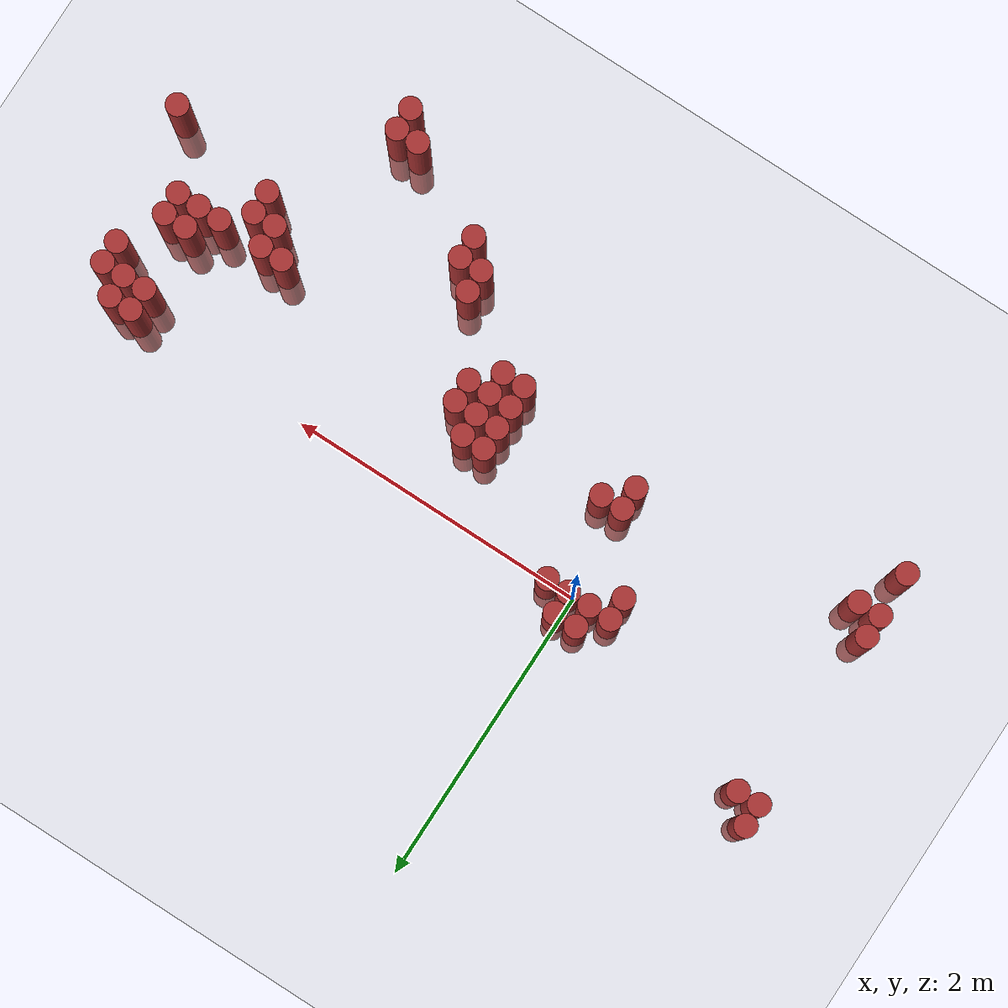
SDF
<sdf version="1.6">
 <world name="default">
  <model name="ground_plane">
   <static>1</static>
   <link name="link">
    <collision name="collision">
     <geometry><plane><normal>0 0 1</normal><size>100 100</size></plane></geometry>
     <surface><friction><ode><mu>100</mu><mu2>50</mu2></ode></friction></surface>
    </collision>
    <visual name="visual">
     <cast_shadows>0</cast_shadows>
     <geometry><plane><normal>0 0 1</normal><size>100 100</size></plane></geometry>
     <material>
      <script><uri>file://media/materials/scripts/gazebo.material</uri><name>Gazebo/Grey</name></script>
     </material>
    </visual>
   </link>
  </model>
  <model name="unit_cylinder_324">
   <static>1</static>
   <pose>-1.625000 -1.175000 0.000000 0.000000 0.000000 0.000000</pose>
   <link name="link">
    <inertial>
     <mass>1</mass>
     <inertia><ixx>0.145833</ixx><ixy>0</ixy><ixz>0</ixz><iyy>0.145833</iyy><iyz>0</iyz><izz>0.125</izz></inertia>
    </inertial>
    <collision name="collision">
     <geometry><cylinder><radius>0.075000</radius><length>1.5</length></cylinder></geometry>
    </collision>
    <visual name="visual">
     <geometry><cylinder><radius>0.075000</radius><length>1.5</length></cylinder></geometry>
     <material>
      <ambient>0.648000 0.192000 0.192000 1</ambient>
      <diffuse>0.648000 0.192000 0.192000 1</diffuse>
     </material>
     <material>
      <script><name>Gazebo/Grey</name><uri>file://media/materials/scripts/gazebo.material</uri></script>
     </material>
    </visual>
   </link>
  </model>
  <model name="unit_cylinder_325">
   <static>1</static>
   <pose>-1.625000 -0.875000 0.000000 0.000000 0.000000 0.000000</pose>
   <link name="link">
    <inertial>
     <mass>1</mass>
     <inertia><ixx>0.145833</ixx><ixy>0</ixy><ixz>0</ixz><iyy>0.145833</iyy><iyz>0</iyz><izz>0.125</izz></inertia>
    </inertial>
    <collision name="collision">
     <geometry><cylinder><radius>0.075000</radius><length>1.5</length></cylinder></geometry>
    </collision>
    <visual name="visual">
     <geometry><cylinder><radius>0.075000</radius><length>1.5</length></cylinder></geometry>
     <material>
      <ambient>0.648000 0.192000 0.192000 1</ambient>
      <diffuse>0.648000 0.192000 0.192000 1</diffuse>
     </material>
     <material>
      <script><name>Gazebo/Grey</name><uri>file://media/materials/scripts/gazebo.material</uri></script>
     </material>
    </visual>
   </link>
  </model>
  <model name="unit_cylinder_326">
   <static>1</static>
   <pose>-1.625000 -0.725000 0.000000 0.000000 0.000000 0.000000</pose>
   <link name="link">
    <inertial>
     <mass>1</mass>
     <inertia><ixx>0.145833</ixx><ixy>0</ixy><ixz>0</ixz><iyy>0.145833</iyy><iyz>0</iyz><izz>0.125</izz></inertia>
    </inertial>
    <collision name="collision">
     <geometry><cylinder><radius>0.075000</radius><length>1.5</length></cylinder></geometry>
    </collision>
    <visual name="visual">
     <geometry><cylinder><radius>0.075000</radius><length>1.5</length></cylinder></geometry>
     <material>
      <ambient>0.648000 0.192000 0.192000 1</ambient>
      <diffuse>0.648000 0.192000 0.192000 1</diffuse>
     </material>
     <material>
      <script><name>Gazebo/Grey</name><uri>file://media/materials/scripts/gazebo.material</uri></script>
     </material>
    </visual>
   </link>
  </model>
  <model name="unit_cylinder_327">
   <static>1</static>
   <pose>-1.625000 0.475000 0.000000 0.000000 0.000000 0.000000</pose>
   <link name="link">
    <inertial>
     <mass>1</mass>
     <inertia><ixx>0.145833</ixx><ixy>0</ixy><ixz>0</ixz><iyy>0.145833</iyy><iyz>0</iyz><izz>0.125</izz></inertia>
    </inertial>
    <collision name="collision">
     <geometry><cylinder><radius>0.075000</radius><length>1.5</length></cylinder></geometry>
    </collision>
    <visual name="visual">
     <geometry><cylinder><radius>0.075000</radius><length>1.5</length></cylinder></geometry>
     <material>
      <ambient>0.648000 0.192000 0.192000 1</ambient>
      <diffuse>0.648000 0.192000 0.192000 1</diffuse>
     </material>
     <material>
      <script><name>Gazebo/Grey</name><uri>file://media/materials/scripts/gazebo.material</uri></script>
     </material>
    </visual>
   </link>
  </model>
  <model name="unit_cylinder_328">
   <static>1</static>
   <pose>-1.625000 0.625000 0.000000 0.000000 0.000000 0.000000</pose>
   <link name="link">
    <inertial>
     <mass>1</mass>
     <inertia><ixx>0.145833</ixx><ixy>0</ixy><ixz>0</ixz><iyy>0.145833</iyy><iyz>0</iyz><izz>0.125</izz></inertia>
    </inertial>
    <collision name="collision">
     <geometry><cylinder><radius>0.075000</radius><length>1.5</length></cylinder></geometry>
    </collision>
    <visual name="visual">
     <geometry><cylinder><radius>0.075000</radius><length>1.5</length></cylinder></geometry>
     <material>
      <ambient>0.648000 0.192000 0.192000 1</ambient>
      <diffuse>0.648000 0.192000 0.192000 1</diffuse>
     </material>
     <material>
      <script><name>Gazebo/Grey</name><uri>file://media/materials/scripts/gazebo.material</uri></script>
     </material>
    </visual>
   </link>
  </model>
  <model name="unit_cylinder_332">
   <static>1</static>
   <pose>-1.475000 -0.875000 0.000000 0.000000 0.000000 0.000000</pose>
   <link name="link">
    <inertial>
     <mass>1</mass>
     <inertia><ixx>0.145833</ixx><ixy>0</ixy><ixz>0</ixz><iyy>0.145833</iyy><iyz>0</iyz><izz>0.125</izz></inertia>
    </inertial>
    <collision name="collision">
     <geometry><cylinder><radius>0.075000</radius><length>1.5</length></cylinder></geometry>
    </collision>
    <visual name="visual">
     <geometry><cylinder><radius>0.075000</radius><length>1.5</length></cylinder></geometry>
     <material>
      <ambient>0.648000 0.192000 0.192000 1</ambient>
      <diffuse>0.648000 0.192000 0.192000 1</diffuse>
     </material>
     <material>
      <script><name>Gazebo/Grey</name><uri>file://media/materials/scripts/gazebo.material</uri></script>
     </material>
    </visual>
   </link>
  </model>
  <model name="unit_cylinder_333">
   <static>1</static>
   <pose>-1.475000 0.475000 0.000000 0.000000 0.000000 0.000000</pose>
   <link name="link">
    <inertial>
     <mass>1</mass>
     <inertia><ixx>0.145833</ixx><ixy>0</ixy><ixz>0</ixz><iyy>0.145833</iyy><iyz>0</iyz><izz>0.125</izz></inertia>
    </inertial>
    <collision name="collision">
     <geometry><cylinder><radius>0.075000</radius><length>1.5</length></cylinder></geometry>
    </collision>
    <visual name="visual">
     <geometry><cylinder><radius>0.075000</radius><length>1.5</length></cylinder></geometry>
     <material>
      <ambient>0.648000 0.192000 0.192000 1</ambient>
      <diffuse>0.648000 0.192000 0.192000 1</diffuse>
     </material>
     <material>
      <script><name>Gazebo/Grey</name><uri>file://media/materials/scripts/gazebo.material</uri></script>
     </material>
    </visual>
   </link>
  </model>
  <model name="unit_cylinder_343">
   <static>1</static>
   <pose>-0.275000 -0.125000 0.000000 0.000000 0.000000 0.000000</pose>
   <link name="link">
    <inertial>
     <mass>1</mass>
     <inertia><ixx>0.145833</ixx><ixy>0</ixy><ixz>0</ixz><iyy>0.145833</iyy><iyz>0</iyz><izz>0.125</izz></inertia>
    </inertial>
    <collision name="collision">
     <geometry><cylinder><radius>0.075000</radius><length>1.5</length></cylinder></geometry>
    </collision>
    <visual name="visual">
     <geometry><cylinder><radius>0.075000</radius><length>1.5</length></cylinder></geometry>
     <material>
      <ambient>0.648000 0.192000 0.192000 1</ambient>
      <diffuse>0.648000 0.192000 0.192000 1</diffuse>
     </material>
     <material>
      <script><name>Gazebo/Grey</name><uri>file://media/materials/scripts/gazebo.material</uri></script>
     </material>
    </visual>
   </link>
  </model>
  <model name="unit_cylinder_344">
   <static>1</static>
   <pose>-0.275000 0.025000 0.000000 0.000000 0.000000 0.000000</pose>
   <link name="link">
    <inertial>
     <mass>1</mass>
     <inertia><ixx>0.145833</ixx><ixy>0</ixy><ixz>0</ixz><iyy>0.145833</iyy><iyz>0</iyz><izz>0.125</izz></inertia>
    </inertial>
    <collision name="collision">
     <geometry><cylinder><radius>0.075000</radius><length>1.5</length></cylinder></geometry>
    </collision>
    <visual name="visual">
     <geometry><cylinder><radius>0.075000</radius><length>1.5</length></cylinder></geometry>
     <material>
      <ambient>0.648000 0.192000 0.192000 1</ambient>
      <diffuse>0.648000 0.192000 0.192000 1</diffuse>
     </material>
     <material>
      <script><name>Gazebo/Grey</name><uri>file://media/materials/scripts/gazebo.material</uri></script>
     </material>
    </visual>
   </link>
  </model>
  <model name="unit_cylinder_345">
   <static>1</static>
   <pose>-0.125000 0.025000 0.000000 0.000000 0.000000 0.000000</pose>
   <link name="link">
    <inertial>
     <mass>1</mass>
     <inertia><ixx>0.145833</ixx><ixy>0</ixy><ixz>0</ixz><iyy>0.145833</iyy><iyz>0</iyz><izz>0.125</izz></inertia>
    </inertial>
    <collision name="collision">
     <geometry><cylinder><radius>0.075000</radius><length>1.5</length></cylinder></geometry>
    </collision>
    <visual name="visual">
     <geometry><cylinder><radius>0.075000</radius><length>1.5</length></cylinder></geometry>
     <material>
      <ambient>0.648000 0.192000 0.192000 1</ambient>
      <diffuse>0.648000 0.192000 0.192000 1</diffuse>
     </material>
     <material>
      <script><name>Gazebo/Grey</name><uri>file://media/materials/scripts/gazebo.material</uri></script>
     </material>
    </visual>
   </link>
  </model>
  <model name="unit_cylinder_346">
   <static>1</static>
   <pose>-0.125000 0.175000 0.000000 0.000000 0.000000 0.000000</pose>
   <link name="link">
    <inertial>
     <mass>1</mass>
     <inertia><ixx>0.145833</ixx><ixy>0</ixy><ixz>0</ixz><iyy>0.145833</iyy><iyz>0</iyz><izz>0.125</izz></inertia>
    </inertial>
    <collision name="collision">
     <geometry><cylinder><radius>0.075000</radius><length>1.5</length></cylinder></geometry>
    </collision>
    <visual name="visual">
     <geometry><cylinder><radius>0.075000</radius><length>1.5</length></cylinder></geometry>
     <material>
      <ambient>0.648000 0.192000 0.192000 1</ambient>
      <diffuse>0.648000 0.192000 0.192000 1</diffuse>
     </material>
     <material>
      <script><name>Gazebo/Grey</name><uri>file://media/materials/scripts/gazebo.material</uri></script>
     </material>
    </visual>
   </link>
  </model>
  <model name="unit_cylinder_348">
   <static>1</static>
   <pose>0.025000 -0.725000 0.000000 0.000000 0.000000 0.000000</pose>
   <link name="link">
    <inertial>
     <mass>1</mass>
     <inertia><ixx>0.145833</ixx><ixy>0</ixy><ixz>0</ixz><iyy>0.145833</iyy><iyz>0</iyz><izz>0.125</izz></inertia>
    </inertial>
    <collision name="collision">
     <geometry><cylinder><radius>0.075000</radius><length>1.5</length></cylinder></geometry>
    </collision>
    <visual name="visual">
     <geometry><cylinder><radius>0.075000</radius><length>1.5</length></cylinder></geometry>
     <material>
      <ambient>0.648000 0.192000 0.192000 1</ambient>
      <diffuse>0.648000 0.192000 0.192000 1</diffuse>
     </material>
     <material>
      <script><name>Gazebo/Grey</name><uri>file://media/materials/scripts/gazebo.material</uri></script>
     </material>
    </visual>
   </link>
  </model>
  <model name="unit_cylinder_349">
   <static>1</static>
   <pose>0.025000 -0.575000 0.000000 0.000000 0.000000 0.000000</pose>
   <link name="link">
    <inertial>
     <mass>1</mass>
     <inertia><ixx>0.145833</ixx><ixy>0</ixy><ixz>0</ixz><iyy>0.145833</iyy><iyz>0</iyz><izz>0.125</izz></inertia>
    </inertial>
    <collision name="collision">
     <geometry><cylinder><radius>0.075000</radius><length>1.5</length></cylinder></geometry>
    </collision>
    <visual name="visual">
     <geometry><cylinder><radius>0.075000</radius><length>1.5</length></cylinder></geometry>
     <material>
      <ambient>0.648000 0.192000 0.192000 1</ambient>
      <diffuse>0.648000 0.192000 0.192000 1</diffuse>
     </material>
     <material>
      <script><name>Gazebo/Grey</name><uri>file://media/materials/scripts/gazebo.material</uri></script>
     </material>
    </visual>
   </link>
  </model>
  <model name="unit_cylinder_350">
   <static>1</static>
   <pose>0.025000 0.025000 0.000000 0.000000 0.000000 0.000000</pose>
   <link name="link">
    <inertial>
     <mass>1</mass>
     <inertia><ixx>0.145833</ixx><ixy>0</ixy><ixz>0</ixz><iyy>0.145833</iyy><iyz>0</iyz><izz>0.125</izz></inertia>
    </inertial>
    <collision name="collision">
     <geometry><cylinder><radius>0.075000</radius><length>1.5</length></cylinder></geometry>
    </collision>
    <visual name="visual">
     <geometry><cylinder><radius>0.075000</radius><length>1.5</length></cylinder></geometry>
     <material>
      <ambient>0.648000 0.192000 0.192000 1</ambient>
      <diffuse>0.648000 0.192000 0.192000 1</diffuse>
     </material>
     <material>
      <script><name>Gazebo/Grey</name><uri>file://media/materials/scripts/gazebo.material</uri></script>
     </material>
    </visual>
   </link>
  </model>
  <model name="unit_cylinder_351">
   <static>1</static>
   <pose>0.025000 0.175000 0.000000 0.000000 0.000000 0.000000</pose>
   <link name="link">
    <inertial>
     <mass>1</mass>
     <inertia><ixx>0.145833</ixx><ixy>0</ixy><ixz>0</ixz><iyy>0.145833</iyy><iyz>0</iyz><izz>0.125</izz></inertia>
    </inertial>
    <collision name="collision">
     <geometry><cylinder><radius>0.075000</radius><length>1.5</length></cylinder></geometry>
    </collision>
    <visual name="visual">
     <geometry><cylinder><radius>0.075000</radius><length>1.5</length></cylinder></geometry>
     <material>
      <ambient>0.648000 0.192000 0.192000 1</ambient>
      <diffuse>0.648000 0.192000 0.192000 1</diffuse>
     </material>
     <material>
      <script><name>Gazebo/Grey</name><uri>file://media/materials/scripts/gazebo.material</uri></script>
     </material>
    </visual>
   </link>
  </model>
  <model name="unit_cylinder_354">
   <static>1</static>
   <pose>0.175000 -0.575000 0.000000 0.000000 0.000000 0.000000</pose>
   <link name="link">
    <inertial>
     <mass>1</mass>
     <inertia><ixx>0.145833</ixx><ixy>0</ixy><ixz>0</ixz><iyy>0.145833</iyy><iyz>0</iyz><izz>0.125</izz></inertia>
    </inertial>
    <collision name="collision">
     <geometry><cylinder><radius>0.075000</radius><length>1.5</length></cylinder></geometry>
    </collision>
    <visual name="visual">
     <geometry><cylinder><radius>0.075000</radius><length>1.5</length></cylinder></geometry>
     <material>
      <ambient>0.648000 0.192000 0.192000 1</ambient>
      <diffuse>0.648000 0.192000 0.192000 1</diffuse>
     </material>
     <material>
      <script><name>Gazebo/Grey</name><uri>file://media/materials/scripts/gazebo.material</uri></script>
     </material>
    </visual>
   </link>
  </model>
  <model name="unit_cylinder_355">
   <static>1</static>
   <pose>0.175000 0.025000 0.000000 0.000000 0.000000 0.000000</pose>
   <link name="link">
    <inertial>
     <mass>1</mass>
     <inertia><ixx>0.145833</ixx><ixy>0</ixy><ixz>0</ixz><iyy>0.145833</iyy><iyz>0</iyz><izz>0.125</izz></inertia>
    </inertial>
    <collision name="collision">
     <geometry><cylinder><radius>0.075000</radius><length>1.5</length></cylinder></geometry>
    </collision>
    <visual name="visual">
     <geometry><cylinder><radius>0.075000</radius><length>1.5</length></cylinder></geometry>
     <material>
      <ambient>0.648000 0.192000 0.192000 1</ambient>
      <diffuse>0.648000 0.192000 0.192000 1</diffuse>
     </material>
     <material>
      <script><name>Gazebo/Grey</name><uri>file://media/materials/scripts/gazebo.material</uri></script>
     </material>
    </visual>
   </link>
  </model>
  <model name="unit_cylinder_366">
   <static>1</static>
   <pose>0.925000 -0.875000 0.000000 0.000000 0.000000 0.000000</pose>
   <link name="link">
    <inertial>
     <mass>1</mass>
     <inertia><ixx>0.145833</ixx><ixy>0</ixy><ixz>0</ixz><iyy>0.145833</iyy><iyz>0</iyz><izz>0.125</izz></inertia>
    </inertial>
    <collision name="collision">
     <geometry><cylinder><radius>0.075000</radius><length>1.5</length></cylinder></geometry>
    </collision>
    <visual name="visual">
     <geometry><cylinder><radius>0.075000</radius><length>1.5</length></cylinder></geometry>
     <material>
      <ambient>0.648000 0.192000 0.192000 1</ambient>
      <diffuse>0.648000 0.192000 0.192000 1</diffuse>
     </material>
     <material>
      <script><name>Gazebo/Grey</name><uri>file://media/materials/scripts/gazebo.material</uri></script>
     </material>
    </visual>
   </link>
  </model>
  <model name="unit_cylinder_367">
   <static>1</static>
   <pose>0.925000 -0.725000 0.000000 0.000000 0.000000 0.000000</pose>
   <link name="link">
    <inertial>
     <mass>1</mass>
     <inertia><ixx>0.145833</ixx><ixy>0</ixy><ixz>0</ixz><iyy>0.145833</iyy><iyz>0</iyz><izz>0.125</izz></inertia>
    </inertial>
    <collision name="collision">
     <geometry><cylinder><radius>0.075000</radius><length>1.5</length></cylinder></geometry>
    </collision>
    <visual name="visual">
     <geometry><cylinder><radius>0.075000</radius><length>1.5</length></cylinder></geometry>
     <material>
      <ambient>0.648000 0.192000 0.192000 1</ambient>
      <diffuse>0.648000 0.192000 0.192000 1</diffuse>
     </material>
     <material>
      <script><name>Gazebo/Grey</name><uri>file://media/materials/scripts/gazebo.material</uri></script>
     </material>
    </visual>
   </link>
  </model>
  <model name="unit_cylinder_368">
   <static>1</static>
   <pose>0.925000 -0.575000 0.000000 0.000000 0.000000 0.000000</pose>
   <link name="link">
    <inertial>
     <mass>1</mass>
     <inertia><ixx>0.145833</ixx><ixy>0</ixy><ixz>0</ixz><iyy>0.145833</iyy><iyz>0</iyz><izz>0.125</izz></inertia>
    </inertial>
    <collision name="collision">
     <geometry><cylinder><radius>0.075000</radius><length>1.5</length></cylinder></geometry>
    </collision>
    <visual name="visual">
     <geometry><cylinder><radius>0.075000</radius><length>1.5</length></cylinder></geometry>
     <material>
      <ambient>0.648000 0.192000 0.192000 1</ambient>
      <diffuse>0.648000 0.192000 0.192000 1</diffuse>
     </material>
     <material>
      <script><name>Gazebo/Grey</name><uri>file://media/materials/scripts/gazebo.material</uri></script>
     </material>
    </visual>
   </link>
  </model>
  <model name="unit_cylinder_369">
   <static>1</static>
   <pose>0.925000 -0.425000 0.000000 0.000000 0.000000 0.000000</pose>
   <link name="link">
    <inertial>
     <mass>1</mass>
     <inertia><ixx>0.145833</ixx><ixy>0</ixy><ixz>0</ixz><iyy>0.145833</iyy><iyz>0</iyz><izz>0.125</izz></inertia>
    </inertial>
    <collision name="collision">
     <geometry><cylinder><radius>0.075000</radius><length>1.5</length></cylinder></geometry>
    </collision>
    <visual name="visual">
     <geometry><cylinder><radius>0.075000</radius><length>1.5</length></cylinder></geometry>
     <material>
      <ambient>0.648000 0.192000 0.192000 1</ambient>
      <diffuse>0.648000 0.192000 0.192000 1</diffuse>
     </material>
     <material>
      <script><name>Gazebo/Grey</name><uri>file://media/materials/scripts/gazebo.material</uri></script>
     </material>
    </visual>
   </link>
  </model>
  <model name="unit_cylinder_371">
   <static>1</static>
   <pose>1.075000 -0.875000 0.000000 0.000000 0.000000 0.000000</pose>
   <link name="link">
    <inertial>
     <mass>1</mass>
     <inertia><ixx>0.145833</ixx><ixy>0</ixy><ixz>0</ixz><iyy>0.145833</iyy><iyz>0</iyz><izz>0.125</izz></inertia>
    </inertial>
    <collision name="collision">
     <geometry><cylinder><radius>0.075000</radius><length>1.5</length></cylinder></geometry>
    </collision>
    <visual name="visual">
     <geometry><cylinder><radius>0.075000</radius><length>1.5</length></cylinder></geometry>
     <material>
      <ambient>0.648000 0.192000 0.192000 1</ambient>
      <diffuse>0.648000 0.192000 0.192000 1</diffuse>
     </material>
     <material>
      <script><name>Gazebo/Grey</name><uri>file://media/materials/scripts/gazebo.material</uri></script>
     </material>
    </visual>
   </link>
  </model>
  <model name="unit_cylinder_372">
   <static>1</static>
   <pose>1.075000 -0.725000 0.000000 0.000000 0.000000 0.000000</pose>
   <link name="link">
    <inertial>
     <mass>1</mass>
     <inertia><ixx>0.145833</ixx><ixy>0</ixy><ixz>0</ixz><iyy>0.145833</iyy><iyz>0</iyz><izz>0.125</izz></inertia>
    </inertial>
    <collision name="collision">
     <geometry><cylinder><radius>0.075000</radius><length>1.5</length></cylinder></geometry>
    </collision>
    <visual name="visual">
     <geometry><cylinder><radius>0.075000</radius><length>1.5</length></cylinder></geometry>
     <material>
      <ambient>0.648000 0.192000 0.192000 1</ambient>
      <diffuse>0.648000 0.192000 0.192000 1</diffuse>
     </material>
     <material>
      <script><name>Gazebo/Grey</name><uri>file://media/materials/scripts/gazebo.material</uri></script>
     </material>
    </visual>
   </link>
  </model>
  <model name="unit_cylinder_373">
   <static>1</static>
   <pose>1.075000 -0.575000 0.000000 0.000000 0.000000 0.000000</pose>
   <link name="link">
    <inertial>
     <mass>1</mass>
     <inertia><ixx>0.145833</ixx><ixy>0</ixy><ixz>0</ixz><iyy>0.145833</iyy><iyz>0</iyz><izz>0.125</izz></inertia>
    </inertial>
    <collision name="collision">
     <geometry><cylinder><radius>0.075000</radius><length>1.5</length></cylinder></geometry>
    </collision>
    <visual name="visual">
     <geometry><cylinder><radius>0.075000</radius><length>1.5</length></cylinder></geometry>
     <material>
      <ambient>0.648000 0.192000 0.192000 1</ambient>
      <diffuse>0.648000 0.192000 0.192000 1</diffuse>
     </material>
     <material>
      <script><name>Gazebo/Grey</name><uri>file://media/materials/scripts/gazebo.material</uri></script>
     </material>
    </visual>
   </link>
  </model>
  <model name="unit_cylinder_374">
   <static>1</static>
   <pose>1.075000 -0.425000 0.000000 0.000000 0.000000 0.000000</pose>
   <link name="link">
    <inertial>
     <mass>1</mass>
     <inertia><ixx>0.145833</ixx><ixy>0</ixy><ixz>0</ixz><iyy>0.145833</iyy><iyz>0</iyz><izz>0.125</izz></inertia>
    </inertial>
    <collision name="collision">
     <geometry><cylinder><radius>0.075000</radius><length>1.5</length></cylinder></geometry>
    </collision>
    <visual name="visual">
     <geometry><cylinder><radius>0.075000</radius><length>1.5</length></cylinder></geometry>
     <material>
      <ambient>0.648000 0.192000 0.192000 1</ambient>
      <diffuse>0.648000 0.192000 0.192000 1</diffuse>
     </material>
     <material>
      <script><name>Gazebo/Grey</name><uri>file://media/materials/scripts/gazebo.material</uri></script>
     </material>
    </visual>
   </link>
  </model>
  <model name="unit_cylinder_375">
   <static>1</static>
   <pose>1.225000 -0.725000 0.000000 0.000000 0.000000 0.000000</pose>
   <link name="link">
    <inertial>
     <mass>1</mass>
     <inertia><ixx>0.145833</ixx><ixy>0</ixy><ixz>0</ixz><iyy>0.145833</iyy><iyz>0</iyz><izz>0.125</izz></inertia>
    </inertial>
    <collision name="collision">
     <geometry><cylinder><radius>0.075000</radius><length>1.5</length></cylinder></geometry>
    </collision>
    <visual name="visual">
     <geometry><cylinder><radius>0.075000</radius><length>1.5</length></cylinder></geometry>
     <material>
      <ambient>0.648000 0.192000 0.192000 1</ambient>
      <diffuse>0.648000 0.192000 0.192000 1</diffuse>
     </material>
     <material>
      <script><name>Gazebo/Grey</name><uri>file://media/materials/scripts/gazebo.material</uri></script>
     </material>
    </visual>
   </link>
  </model>
  <model name="unit_cylinder_376">
   <static>1</static>
   <pose>1.225000 -0.575000 0.000000 0.000000 0.000000 0.000000</pose>
   <link name="link">
    <inertial>
     <mass>1</mass>
     <inertia><ixx>0.145833</ixx><ixy>0</ixy><ixz>0</ixz><iyy>0.145833</iyy><iyz>0</iyz><izz>0.125</izz></inertia>
    </inertial>
    <collision name="collision">
     <geometry><cylinder><radius>0.075000</radius><length>1.5</length></cylinder></geometry>
    </collision>
    <visual name="visual">
     <geometry><cylinder><radius>0.075000</radius><length>1.5</length></cylinder></geometry>
     <material>
      <ambient>0.648000 0.192000 0.192000 1</ambient>
      <diffuse>0.648000 0.192000 0.192000 1</diffuse>
     </material>
     <material>
      <script><name>Gazebo/Grey</name><uri>file://media/materials/scripts/gazebo.material</uri></script>
     </material>
    </visual>
   </link>
  </model>
  <model name="unit_cylinder_377">
   <static>1</static>
   <pose>1.525000 -1.325000 0.000000 0.000000 0.000000 0.000000</pose>
   <link name="link">
    <inertial>
     <mass>1</mass>
     <inertia><ixx>0.145833</ixx><ixy>0</ixy><ixz>0</ixz><iyy>0.145833</iyy><iyz>0</iyz><izz>0.125</izz></inertia>
    </inertial>
    <collision name="collision">
     <geometry><cylinder><radius>0.075000</radius><length>1.5</length></cylinder></geometry>
    </collision>
    <visual name="visual">
     <geometry><cylinder><radius>0.075000</radius><length>1.5</length></cylinder></geometry>
     <material>
      <ambient>0.648000 0.192000 0.192000 1</ambient>
      <diffuse>0.648000 0.192000 0.192000 1</diffuse>
     </material>
     <material>
      <script><name>Gazebo/Grey</name><uri>file://media/materials/scripts/gazebo.material</uri></script>
     </material>
    </visual>
   </link>
  </model>
  <model name="unit_cylinder_378">
   <static>1</static>
   <pose>1.525000 -1.175000 0.000000 0.000000 0.000000 0.000000</pose>
   <link name="link">
    <inertial>
     <mass>1</mass>
     <inertia><ixx>0.145833</ixx><ixy>0</ixy><ixz>0</ixz><iyy>0.145833</iyy><iyz>0</iyz><izz>0.125</izz></inertia>
    </inertial>
    <collision name="collision">
     <geometry><cylinder><radius>0.075000</radius><length>1.5</length></cylinder></geometry>
    </collision>
    <visual name="visual">
     <geometry><cylinder><radius>0.075000</radius><length>1.5</length></cylinder></geometry>
     <material>
      <ambient>0.648000 0.192000 0.192000 1</ambient>
      <diffuse>0.648000 0.192000 0.192000 1</diffuse>
     </material>
     <material>
      <script><name>Gazebo/Grey</name><uri>file://media/materials/scripts/gazebo.material</uri></script>
     </material>
    </visual>
   </link>
  </model>
  <model name="unit_cylinder_379">
   <static>1</static>
   <pose>1.675000 -1.475000 0.000000 0.000000 0.000000 0.000000</pose>
   <link name="link">
    <inertial>
     <mass>1</mass>
     <inertia><ixx>0.145833</ixx><ixy>0</ixy><ixz>0</ixz><iyy>0.145833</iyy><iyz>0</iyz><izz>0.125</izz></inertia>
    </inertial>
    <collision name="collision">
     <geometry><cylinder><radius>0.075000</radius><length>1.5</length></cylinder></geometry>
    </collision>
    <visual name="visual">
     <geometry><cylinder><radius>0.075000</radius><length>1.5</length></cylinder></geometry>
     <material>
      <ambient>0.648000 0.192000 0.192000 1</ambient>
      <diffuse>0.648000 0.192000 0.192000 1</diffuse>
     </material>
     <material>
      <script><name>Gazebo/Grey</name><uri>file://media/materials/scripts/gazebo.material</uri></script>
     </material>
    </visual>
   </link>
  </model>
  <model name="unit_cylinder_380">
   <static>1</static>
   <pose>1.675000 -1.325000 0.000000 0.000000 0.000000 0.000000</pose>
   <link name="link">
    <inertial>
     <mass>1</mass>
     <inertia><ixx>0.145833</ixx><ixy>0</ixy><ixz>0</ixz><iyy>0.145833</iyy><iyz>0</iyz><izz>0.125</izz></inertia>
    </inertial>
    <collision name="collision">
     <geometry><cylinder><radius>0.075000</radius><length>1.5</length></cylinder></geometry>
    </collision>
    <visual name="visual">
     <geometry><cylinder><radius>0.075000</radius><length>1.5</length></cylinder></geometry>
     <material>
      <ambient>0.648000 0.192000 0.192000 1</ambient>
      <diffuse>0.648000 0.192000 0.192000 1</diffuse>
     </material>
     <material>
      <script><name>Gazebo/Grey</name><uri>file://media/materials/scripts/gazebo.material</uri></script>
     </material>
    </visual>
   </link>
  </model>
  <model name="unit_cylinder_386">
   <static>1</static>
   <pose>2.275000 -1.775000 0.000000 0.000000 0.000000 0.000000</pose>
   <link name="link">
    <inertial>
     <mass>1</mass>
     <inertia><ixx>0.145833</ixx><ixy>0</ixy><ixz>0</ixz><iyy>0.145833</iyy><iyz>0</iyz><izz>0.125</izz></inertia>
    </inertial>
    <collision name="collision">
     <geometry><cylinder><radius>0.075000</radius><length>1.5</length></cylinder></geometry>
    </collision>
    <visual name="visual">
     <geometry><cylinder><radius>0.075000</radius><length>1.5</length></cylinder></geometry>
     <material>
      <ambient>0.648000 0.192000 0.192000 1</ambient>
      <diffuse>0.648000 0.192000 0.192000 1</diffuse>
     </material>
     <material>
      <script><name>Gazebo/Grey</name><uri>file://media/materials/scripts/gazebo.material</uri></script>
     </material>
    </visual>
   </link>
  </model>
  <model name="unit_cylinder_388">
   <static>1</static>
   <pose>2.425000 -1.925000 0.000000 0.000000 0.000000 0.000000</pose>
   <link name="link">
    <inertial>
     <mass>1</mass>
     <inertia><ixx>0.145833</ixx><ixy>0</ixy><ixz>0</ixz><iyy>0.145833</iyy><iyz>0</iyz><izz>0.125</izz></inertia>
    </inertial>
    <collision name="collision">
     <geometry><cylinder><radius>0.075000</radius><length>1.5</length></cylinder></geometry>
    </collision>
    <visual name="visual">
     <geometry><cylinder><radius>0.075000</radius><length>1.5</length></cylinder></geometry>
     <material>
      <ambient>0.648000 0.192000 0.192000 1</ambient>
      <diffuse>0.648000 0.192000 0.192000 1</diffuse>
     </material>
     <material>
      <script><name>Gazebo/Grey</name><uri>file://media/materials/scripts/gazebo.material</uri></script>
     </material>
    </visual>
   </link>
  </model>
  <model name="unit_cylinder_389">
   <static>1</static>
   <pose>2.425000 -1.775000 0.000000 0.000000 0.000000 0.000000</pose>
   <link name="link">
    <inertial>
     <mass>1</mass>
     <inertia><ixx>0.145833</ixx><ixy>0</ixy><ixz>0</ixz><iyy>0.145833</iyy><iyz>0</iyz><izz>0.125</izz></inertia>
    </inertial>
    <collision name="collision">
     <geometry><cylinder><radius>0.075000</radius><length>1.5</length></cylinder></geometry>
    </collision>
    <visual name="visual">
     <geometry><cylinder><radius>0.075000</radius><length>1.5</length></cylinder></geometry>
     <material>
      <ambient>0.648000 0.192000 0.192000 1</ambient>
      <diffuse>0.648000 0.192000 0.192000 1</diffuse>
     </material>
     <material>
      <script><name>Gazebo/Grey</name><uri>file://media/materials/scripts/gazebo.material</uri></script>
     </material>
    </visual>
   </link>
  </model>
  <model name="unit_cylinder_394">
   <static>1</static>
   <pose>2.575000 -0.725000 0.000000 0.000000 0.000000 0.000000</pose>
   <link name="link">
    <inertial>
     <mass>1</mass>
     <inertia><ixx>0.145833</ixx><ixy>0</ixy><ixz>0</ixz><iyy>0.145833</iyy><iyz>0</iyz><izz>0.125</izz></inertia>
    </inertial>
    <collision name="collision">
     <geometry><cylinder><radius>0.075000</radius><length>1.5</length></cylinder></geometry>
    </collision>
    <visual name="visual">
     <geometry><cylinder><radius>0.075000</radius><length>1.5</length></cylinder></geometry>
     <material>
      <ambient>0.648000 0.192000 0.192000 1</ambient>
      <diffuse>0.648000 0.192000 0.192000 1</diffuse>
     </material>
     <material>
      <script><name>Gazebo/Grey</name><uri>file://media/materials/scripts/gazebo.material</uri></script>
     </material>
    </visual>
   </link>
  </model>
  <model name="unit_cylinder_402">
   <static>1</static>
   <pose>2.725000 -0.875000 0.000000 0.000000 0.000000 0.000000</pose>
   <link name="link">
    <inertial>
     <mass>1</mass>
     <inertia><ixx>0.145833</ixx><ixy>0</ixy><ixz>0</ixz><iyy>0.145833</iyy><iyz>0</iyz><izz>0.125</izz></inertia>
    </inertial>
    <collision name="collision">
     <geometry><cylinder><radius>0.075000</radius><length>1.5</length></cylinder></geometry>
    </collision>
    <visual name="visual">
     <geometry><cylinder><radius>0.075000</radius><length>1.5</length></cylinder></geometry>
     <material>
      <ambient>0.648000 0.192000 0.192000 1</ambient>
      <diffuse>0.648000 0.192000 0.192000 1</diffuse>
     </material>
     <material>
      <script><name>Gazebo/Grey</name><uri>file://media/materials/scripts/gazebo.material</uri></script>
     </material>
    </visual>
   </link>
  </model>
  <model name="unit_cylinder_403">
   <static>1</static>
   <pose>2.725000 -0.725000 0.000000 0.000000 0.000000 0.000000</pose>
   <link name="link">
    <inertial>
     <mass>1</mass>
     <inertia><ixx>0.145833</ixx><ixy>0</ixy><ixz>0</ixz><iyy>0.145833</iyy><iyz>0</iyz><izz>0.125</izz></inertia>
    </inertial>
    <collision name="collision">
     <geometry><cylinder><radius>0.075000</radius><length>1.5</length></cylinder></geometry>
    </collision>
    <visual name="visual">
     <geometry><cylinder><radius>0.075000</radius><length>1.5</length></cylinder></geometry>
     <material>
      <ambient>0.648000 0.192000 0.192000 1</ambient>
      <diffuse>0.648000 0.192000 0.192000 1</diffuse>
     </material>
     <material>
      <script><name>Gazebo/Grey</name><uri>file://media/materials/scripts/gazebo.material</uri></script>
     </material>
    </visual>
   </link>
  </model>
  <model name="unit_cylinder_408">
   <static>1</static>
   <pose>2.875000 -1.025000 0.000000 0.000000 0.000000 0.000000</pose>
   <link name="link">
    <inertial>
     <mass>1</mass>
     <inertia><ixx>0.145833</ixx><ixy>0</ixy><ixz>0</ixz><iyy>0.145833</iyy><iyz>0</iyz><izz>0.125</izz></inertia>
    </inertial>
    <collision name="collision">
     <geometry><cylinder><radius>0.075000</radius><length>1.5</length></cylinder></geometry>
    </collision>
    <visual name="visual">
     <geometry><cylinder><radius>0.075000</radius><length>1.5</length></cylinder></geometry>
     <material>
      <ambient>0.648000 0.192000 0.192000 1</ambient>
      <diffuse>0.648000 0.192000 0.192000 1</diffuse>
     </material>
     <material>
      <script><name>Gazebo/Grey</name><uri>file://media/materials/scripts/gazebo.material</uri></script>
     </material>
    </visual>
   </link>
  </model>
  <model name="unit_cylinder_409">
   <static>1</static>
   <pose>2.875000 -0.875000 0.000000 0.000000 0.000000 0.000000</pose>
   <link name="link">
    <inertial>
     <mass>1</mass>
     <inertia><ixx>0.145833</ixx><ixy>0</ixy><ixz>0</ixz><iyy>0.145833</iyy><iyz>0</iyz><izz>0.125</izz></inertia>
    </inertial>
    <collision name="collision">
     <geometry><cylinder><radius>0.075000</radius><length>1.5</length></cylinder></geometry>
    </collision>
    <visual name="visual">
     <geometry><cylinder><radius>0.075000</radius><length>1.5</length></cylinder></geometry>
     <material>
      <ambient>0.648000 0.192000 0.192000 1</ambient>
      <diffuse>0.648000 0.192000 0.192000 1</diffuse>
     </material>
     <material>
      <script><name>Gazebo/Grey</name><uri>file://media/materials/scripts/gazebo.material</uri></script>
     </material>
    </visual>
   </link>
  </model>
  <model name="unit_cylinder_411">
   <static>1</static>
   <pose>3.025000 -0.725000 0.000000 0.000000 0.000000 0.000000</pose>
   <link name="link">
    <inertial>
     <mass>1</mass>
     <inertia><ixx>0.145833</ixx><ixy>0</ixy><ixz>0</ixz><iyy>0.145833</iyy><iyz>0</iyz><izz>0.125</izz></inertia>
    </inertial>
    <collision name="collision">
     <geometry><cylinder><radius>0.075000</radius><length>1.5</length></cylinder></geometry>
    </collision>
    <visual name="visual">
     <geometry><cylinder><radius>0.075000</radius><length>1.5</length></cylinder></geometry>
     <material>
      <ambient>0.648000 0.192000 0.192000 1</ambient>
      <diffuse>0.648000 0.192000 0.192000 1</diffuse>
     </material>
     <material>
      <script><name>Gazebo/Grey</name><uri>file://media/materials/scripts/gazebo.material</uri></script>
     </material>
    </visual>
   </link>
  </model>
  <model name="unit_cylinder_415">
   <static>1</static>
   <pose>3.175000 -0.725000 0.000000 0.000000 0.000000 0.000000</pose>
   <link name="link">
    <inertial>
     <mass>1</mass>
     <inertia><ixx>0.145833</ixx><ixy>0</ixy><ixz>0</ixz><iyy>0.145833</iyy><iyz>0</iyz><izz>0.125</izz></inertia>
    </inertial>
    <collision name="collision">
     <geometry><cylinder><radius>0.075000</radius><length>1.5</length></cylinder></geometry>
    </collision>
    <visual name="visual">
     <geometry><cylinder><radius>0.075000</radius><length>1.5</length></cylinder></geometry>
     <material>
      <ambient>0.648000 0.192000 0.192000 1</ambient>
      <diffuse>0.648000 0.192000 0.192000 1</diffuse>
     </material>
     <material>
      <script><name>Gazebo/Grey</name><uri>file://media/materials/scripts/gazebo.material</uri></script>
     </material>
    </visual>
   </link>
  </model>
  <model name="unit_cylinder_416">
   <static>1</static>
   <pose>3.175000 -0.575000 0.000000 0.000000 0.000000 0.000000</pose>
   <link name="link">
    <inertial>
     <mass>1</mass>
     <inertia><ixx>0.145833</ixx><ixy>0</ixy><ixz>0</ixz><iyy>0.145833</iyy><iyz>0</iyz><izz>0.125</izz></inertia>
    </inertial>
    <collision name="collision">
     <geometry><cylinder><radius>0.075000</radius><length>1.5</length></cylinder></geometry>
    </collision>
    <visual name="visual">
     <geometry><cylinder><radius>0.075000</radius><length>1.5</length></cylinder></geometry>
     <material>
      <ambient>0.648000 0.192000 0.192000 1</ambient>
      <diffuse>0.648000 0.192000 0.192000 1</diffuse>
     </material>
     <material>
      <script><name>Gazebo/Grey</name><uri>file://media/materials/scripts/gazebo.material</uri></script>
     </material>
    </visual>
   </link>
  </model>
  <model name="unit_cylinder_417">
   <static>1</static>
   <pose>3.175000 -0.125000 0.000000 0.000000 0.000000 0.000000</pose>
   <link name="link">
    <inertial>
     <mass>1</mass>
     <inertia><ixx>0.145833</ixx><ixy>0</ixy><ixz>0</ixz><iyy>0.145833</iyy><iyz>0</iyz><izz>0.125</izz></inertia>
    </inertial>
    <collision name="collision">
     <geometry><cylinder><radius>0.075000</radius><length>1.5</length></cylinder></geometry>
    </collision>
    <visual name="visual">
     <geometry><cylinder><radius>0.075000</radius><length>1.5</length></cylinder></geometry>
     <material>
      <ambient>0.648000 0.192000 0.192000 1</ambient>
      <diffuse>0.648000 0.192000 0.192000 1</diffuse>
     </material>
     <material>
      <script><name>Gazebo/Grey</name><uri>file://media/materials/scripts/gazebo.material</uri></script>
     </material>
    </visual>
   </link>
  </model>
  <model name="unit_cylinder_418">
   <static>1</static>
   <pose>3.175000 0.025000 0.000000 0.000000 0.000000 0.000000</pose>
   <link name="link">
    <inertial>
     <mass>1</mass>
     <inertia><ixx>0.145833</ixx><ixy>0</ixy><ixz>0</ixz><iyy>0.145833</iyy><iyz>0</iyz><izz>0.125</izz></inertia>
    </inertial>
    <collision name="collision">
     <geometry><cylinder><radius>0.075000</radius><length>1.5</length></cylinder></geometry>
    </collision>
    <visual name="visual">
     <geometry><cylinder><radius>0.075000</radius><length>1.5</length></cylinder></geometry>
     <material>
      <ambient>0.648000 0.192000 0.192000 1</ambient>
      <diffuse>0.648000 0.192000 0.192000 1</diffuse>
     </material>
     <material>
      <script><name>Gazebo/Grey</name><uri>file://media/materials/scripts/gazebo.material</uri></script>
     </material>
    </visual>
   </link>
  </model>
  <model name="unit_cylinder_422">
   <static>1</static>
   <pose>3.325000 -0.725000 0.000000 0.000000 0.000000 0.000000</pose>
   <link name="link">
    <inertial>
     <mass>1</mass>
     <inertia><ixx>0.145833</ixx><ixy>0</ixy><ixz>0</ixz><iyy>0.145833</iyy><iyz>0</iyz><izz>0.125</izz></inertia>
    </inertial>
    <collision name="collision">
     <geometry><cylinder><radius>0.075000</radius><length>1.5</length></cylinder></geometry>
    </collision>
    <visual name="visual">
     <geometry><cylinder><radius>0.075000</radius><length>1.5</length></cylinder></geometry>
     <material>
      <ambient>0.648000 0.192000 0.192000 1</ambient>
      <diffuse>0.648000 0.192000 0.192000 1</diffuse>
     </material>
     <material>
      <script><name>Gazebo/Grey</name><uri>file://media/materials/scripts/gazebo.material</uri></script>
     </material>
    </visual>
   </link>
  </model>
  <model name="unit_cylinder_423">
   <static>1</static>
   <pose>3.325000 -0.575000 0.000000 0.000000 0.000000 0.000000</pose>
   <link name="link">
    <inertial>
     <mass>1</mass>
     <inertia><ixx>0.145833</ixx><ixy>0</ixy><ixz>0</ixz><iyy>0.145833</iyy><iyz>0</iyz><izz>0.125</izz></inertia>
    </inertial>
    <collision name="collision">
     <geometry><cylinder><radius>0.075000</radius><length>1.5</length></cylinder></geometry>
    </collision>
    <visual name="visual">
     <geometry><cylinder><radius>0.075000</radius><length>1.5</length></cylinder></geometry>
     <material>
      <ambient>0.648000 0.192000 0.192000 1</ambient>
      <diffuse>0.648000 0.192000 0.192000 1</diffuse>
     </material>
     <material>
      <script><name>Gazebo/Grey</name><uri>file://media/materials/scripts/gazebo.material</uri></script>
     </material>
    </visual>
   </link>
  </model>
  <model name="unit_cylinder_424">
   <static>1</static>
   <pose>3.325000 -0.125000 0.000000 0.000000 0.000000 0.000000</pose>
   <link name="link">
    <inertial>
     <mass>1</mass>
     <inertia><ixx>0.145833</ixx><ixy>0</ixy><ixz>0</ixz><iyy>0.145833</iyy><iyz>0</iyz><izz>0.125</izz></inertia>
    </inertial>
    <collision name="collision">
     <geometry><cylinder><radius>0.075000</radius><length>1.5</length></cylinder></geometry>
    </collision>
    <visual name="visual">
     <geometry><cylinder><radius>0.075000</radius><length>1.5</length></cylinder></geometry>
     <material>
      <ambient>0.648000 0.192000 0.192000 1</ambient>
      <diffuse>0.648000 0.192000 0.192000 1</diffuse>
     </material>
     <material>
      <script><name>Gazebo/Grey</name><uri>file://media/materials/scripts/gazebo.material</uri></script>
     </material>
    </visual>
   </link>
  </model>
  <model name="unit_cylinder_425">
   <static>1</static>
   <pose>3.325000 0.025000 0.000000 0.000000 0.000000 0.000000</pose>
   <link name="link">
    <inertial>
     <mass>1</mass>
     <inertia><ixx>0.145833</ixx><ixy>0</ixy><ixz>0</ixz><iyy>0.145833</iyy><iyz>0</iyz><izz>0.125</izz></inertia>
    </inertial>
    <collision name="collision">
     <geometry><cylinder><radius>0.075000</radius><length>1.5</length></cylinder></geometry>
    </collision>
    <visual name="visual">
     <geometry><cylinder><radius>0.075000</radius><length>1.5</length></cylinder></geometry>
     <material>
      <ambient>0.648000 0.192000 0.192000 1</ambient>
      <diffuse>0.648000 0.192000 0.192000 1</diffuse>
     </material>
     <material>
      <script><name>Gazebo/Grey</name><uri>file://media/materials/scripts/gazebo.material</uri></script>
     </material>
    </visual>
   </link>
  </model>
  <model name="unit_cylinder_428">
   <static>1</static>
   <pose>3.475000 -0.275000 0.000000 0.000000 0.000000 0.000000</pose>
   <link name="link">
    <inertial>
     <mass>1</mass>
     <inertia><ixx>0.145833</ixx><ixy>0</ixy><ixz>0</ixz><iyy>0.145833</iyy><iyz>0</iyz><izz>0.125</izz></inertia>
    </inertial>
    <collision name="collision">
     <geometry><cylinder><radius>0.075000</radius><length>1.5</length></cylinder></geometry>
    </collision>
    <visual name="visual">
     <geometry><cylinder><radius>0.075000</radius><length>1.5</length></cylinder></geometry>
     <material>
      <ambient>0.648000 0.192000 0.192000 1</ambient>
      <diffuse>0.648000 0.192000 0.192000 1</diffuse>
     </material>
     <material>
      <script><name>Gazebo/Grey</name><uri>file://media/materials/scripts/gazebo.material</uri></script>
     </material>
    </visual>
   </link>
  </model>
  <model name="unit_cylinder_429">
   <static>1</static>
   <pose>3.475000 -0.125000 0.000000 0.000000 0.000000 0.000000</pose>
   <link name="link">
    <inertial>
     <mass>1</mass>
     <inertia><ixx>0.145833</ixx><ixy>0</ixy><ixz>0</ixz><iyy>0.145833</iyy><iyz>0</iyz><izz>0.125</izz></inertia>
    </inertial>
    <collision name="collision">
     <geometry><cylinder><radius>0.075000</radius><length>1.5</length></cylinder></geometry>
    </collision>
    <visual name="visual">
     <geometry><cylinder><radius>0.075000</radius><length>1.5</length></cylinder></geometry>
     <material>
      <ambient>0.648000 0.192000 0.192000 1</ambient>
      <diffuse>0.648000 0.192000 0.192000 1</diffuse>
     </material>
     <material>
      <script><name>Gazebo/Grey</name><uri>file://media/materials/scripts/gazebo.material</uri></script>
     </material>
    </visual>
   </link>
  </model>
  <model name="unit_cylinder_432">
   <static>1</static>
   <pose>3.625000 -1.175000 0.000000 0.000000 0.000000 0.000000</pose>
   <link name="link">
    <inertial>
     <mass>1</mass>
     <inertia><ixx>0.145833</ixx><ixy>0</ixy><ixz>0</ixz><iyy>0.145833</iyy><iyz>0</iyz><izz>0.125</izz></inertia>
    </inertial>
    <collision name="collision">
     <geometry><cylinder><radius>0.075000</radius><length>1.5</length></cylinder></geometry>
    </collision>
    <visual name="visual">
     <geometry><cylinder><radius>0.075000</radius><length>1.5</length></cylinder></geometry>
     <material>
      <ambient>0.648000 0.192000 0.192000 1</ambient>
      <diffuse>0.648000 0.192000 0.192000 1</diffuse>
     </material>
     <material>
      <script><name>Gazebo/Grey</name><uri>file://media/materials/scripts/gazebo.material</uri></script>
     </material>
    </visual>
   </link>
  </model>
 </world>
</sdf>
